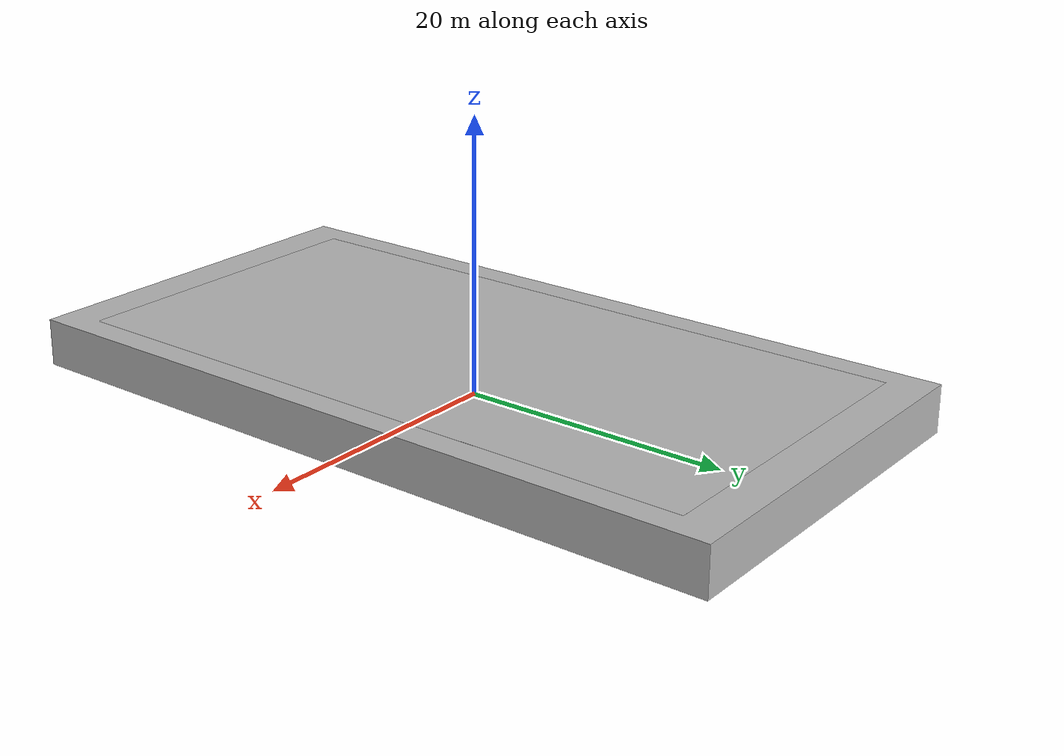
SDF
<?xml version='1.0'?>
<sdf version='1.4'>
  <model name="pool">
    <static>true</static>

    <link name='pool_wall'>
      <pose frame=''>0 0 1.5 1.5708 0 0</pose>
      <visual name='base_link_visual'>
        <pose frame=''>0 0 0 0 0 0</pose>
        <geometry>
          <mesh>
            <uri>model://pool/meshes/pool_wall.STL</uri>
          </mesh>
        </geometry>
        <material>
          <script>
            <uri>file://media/materials/scripts/gazebo.material</uri>
            <name>Gazebo/Runway</name>
          </script>
        </material>
      </visual>
      <collision name='base_link_collision'>
        <pose frame=''>0 0 0 0 0 0</pose>
        <geometry>
          <mesh>
            <uri>model://pool/meshes/pool_wall.STL</uri>
          </mesh>
        </geometry>
      </collision>
    </link>

    <link name='water'>
      <pose frame=''>0 0 1.5 1.5708 0 0</pose>
      <visual name='water_visual'>
        <pose frame=''>0 0 0 0 0 0</pose>
        <geometry>
          <mesh>
            <uri>model://pool/meshes/water.STL</uri>
          </mesh>
        </geometry>
        <material>
          <script>
            <uri>model://pool/materials/scripts/water.material</uri>
            <name>UUVSimulator/SeaWall</name>
          </script>

        </material>
      </visual>
      <collision name='water_collision'>
        <pose frame=''>0 0 0 0 0 0</pose>
        <geometry>
          <mesh>
            <uri>model://pool/meshes/water.STL</uri>
          </mesh>
        </geometry>
      </collision>
    </link>

    <link name='top_surface'>
      <pose frame=''>0 0 3.25 0 0 0</pose>
      <visual name='top_surface_visual'>
        <pose frame=''>0 0 0 0 0 0</pose>
        <geometry>
          <box>
            <size>25 50 0.001</size>
          </box>
        </geometry>
        <material>
          <script>
            <uri>model://pool/materials/scripts/water.material</uri>
            <name>UUVSimulator/SeaWall</name>
          </script>
        </material>
      </visual>
      <collision name='top_surface_collision'>
        <pose frame=''>0 0 0 0 0 0</pose>
        <geometry>
          <box>
            <size>25 50 0.001</size>
          </box>
        </geometry>
      </collision>
    </link>
    <link name='botton_surface'>
      <pose frame=''>0 0 0.25 0 0 0</pose>
      <visual name='bottom_surface_visual'>
        <pose frame=''>0 0 0 0 0 0</pose>
        <geometry>
          <box>
            <size>25 50 0.001</size>
          </box>
        </geometry>
        <material>
          <script>
            <uri>model://pool/materials/scripts/water.material</uri>
            <name>UUVSimulator/SeaWall</name>
          </script>
        </material>
      </visual>
      <collision name='bottom_surface_collision'>
        <pose frame=''>0 0 0 0 0 0</pose>
        <geometry>
          <box>
            <size>25 50 0.001</size>
          </box>
        </geometry>
      </collision>
    </link>
  </model>
</sdf>
